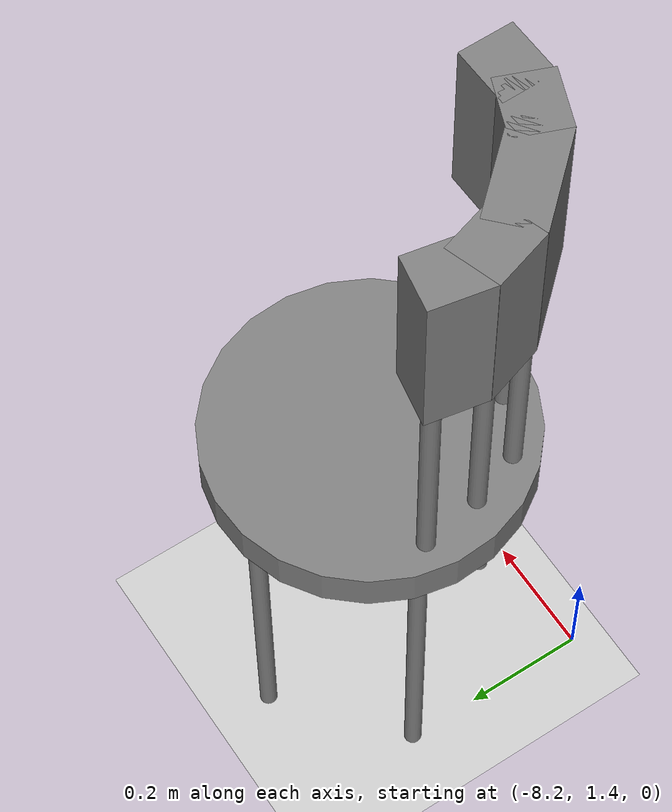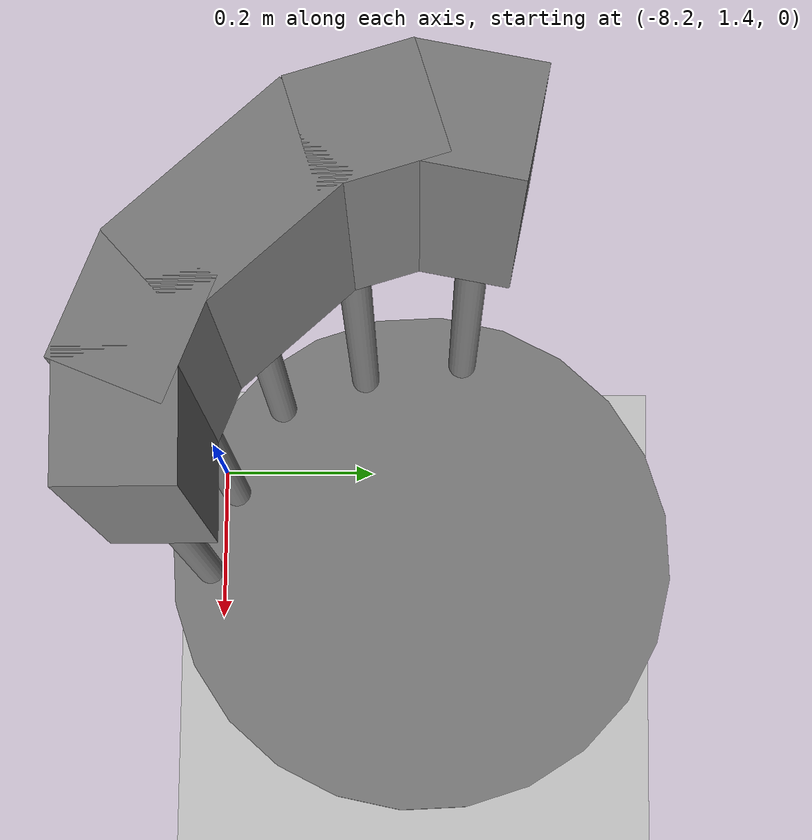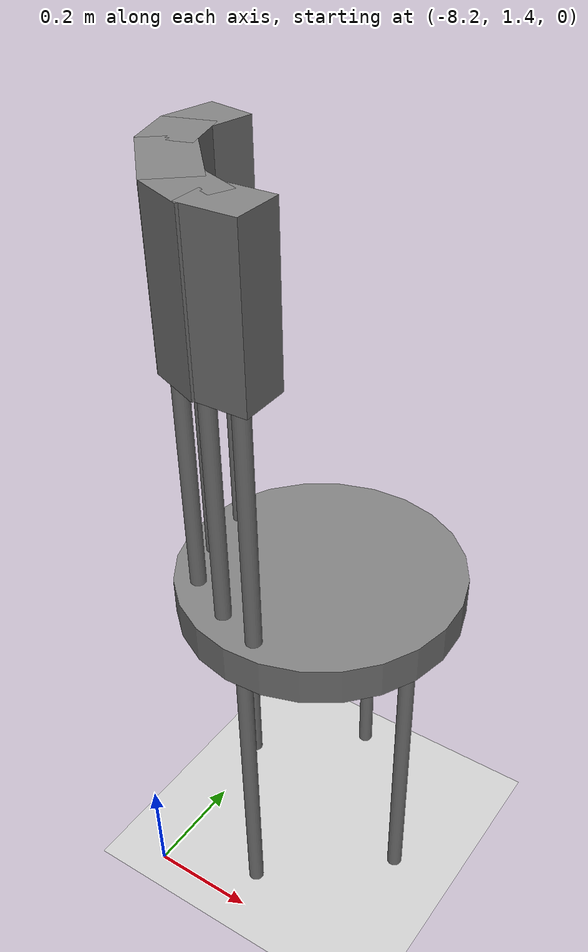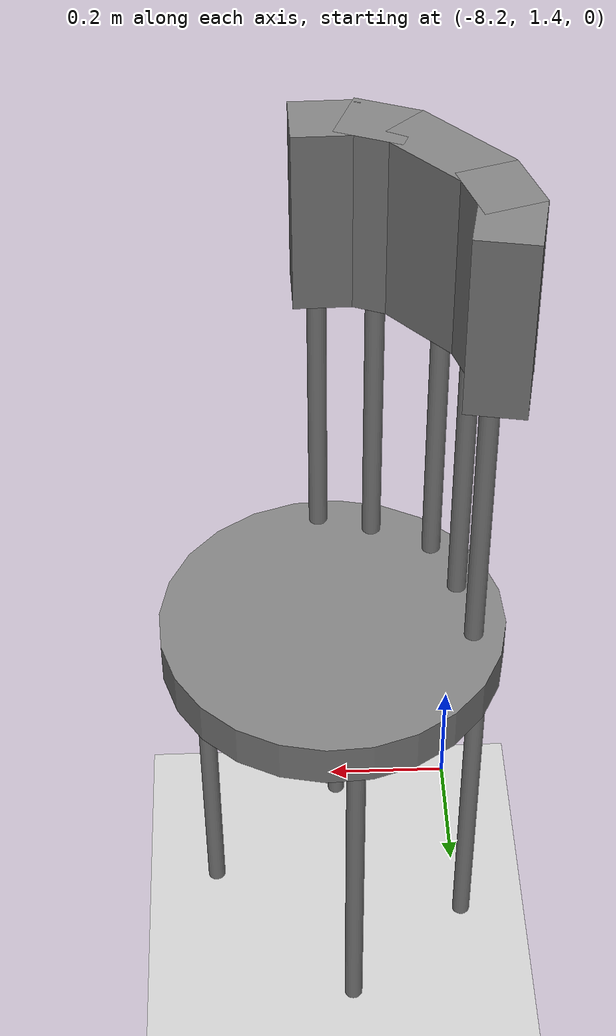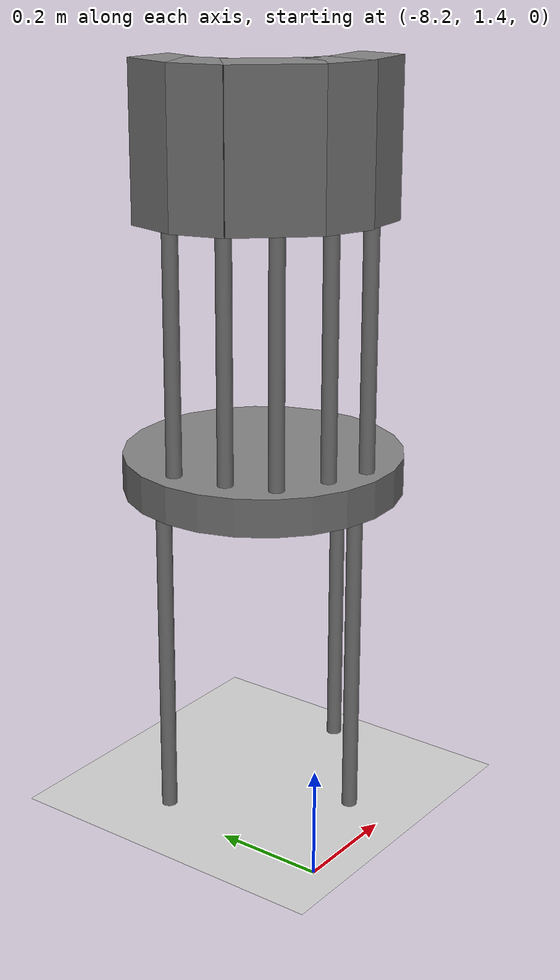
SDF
<sdf version="1.6">
 <world name="default">
  <model name="ground_plane">
   <static>1</static>
   <link name="link">
    <collision name="collision">
     <geometry><plane><normal>0 0 1</normal><size>100 100</size></plane></geometry>
     <surface>
      <contact><collide_bitmask>65535</collide_bitmask></contact>
      <friction><ode><mu>100</mu><mu2>50</mu2></ode></friction>
     </surface>
    </collision>
    <visual name="visual">
     <cast_shadows>0</cast_shadows>
     <geometry><plane><normal>0 0 1</normal><size>100 100</size></plane></geometry>
     <material>
      <script><uri>file://media/materials/scripts/gazebo.material</uri><name>Gazebo/Grey</name></script>
     </material>
    </visual>
   </link>
  </model>
  <model name="chair_1_clone_0">
   <static>1</static>
   <pose>-8.07872 1.59443 0.85 0 0 -2.42909</pose>
   <link name="colision">
    <pose>-0.112954 0 -0.15 0 -0 0</pose>
    <collision name="collision">
     <geometry><cylinder><radius>0.26</radius><length>1.4</length></cylinder></geometry>
    </collision>
   </link>
   <link name="link_0">
    <pose>-0.112954 0.002154 -0.208402 0 -0 0</pose>
    <visual name="visual">
     <geometry><cylinder><radius>0.254492</radius><length>0.0690057</length></cylinder></geometry>
     <material>
      <diffuse>0.5 0.5 0.5 1</diffuse>
      <specular>0.5 0.5 0.5 1</specular>
      <ambient>0.47 0.36 0.19 1</ambient>
     </material>
    </visual>
   </link>
   <link name="link_0_clone">
    <pose>-0.23509 -0.177559 -0.509133 0 -0 0</pose>
    <visual name="visual">
     <geometry><cylinder><radius>0.0139887</radius><length>0.624683</length></cylinder></geometry>
     <material>
      <diffuse>0.5 0.5 0.5 1</diffuse>
      <specular>0.5 0.5 0.5 1</specular>
      <ambient>0.47 0.36 0.19 1</ambient>
     </material>
    </visual>
   </link>
   <link name="link_0_clone_clone">
    <pose>-0.240938 0.153013 -0.509133 0 -0 0</pose>
    <visual name="visual">
     <geometry><cylinder><radius>0.0139887</radius><length>0.624683</length></cylinder></geometry>
     <material>
      <diffuse>0.5 0.5 0.5 1</diffuse>
      <specular>0.5 0.5 0.5 1</specular>
      <ambient>0.47 0.36 0.19 1</ambient>
     </material>
    </visual>
   </link>
   <link name="link_0_clone_clone_0">
    <pose>0.036021 0.151623 -0.509133 0 -0 0</pose>
    <visual name="visual">
     <geometry><cylinder><radius>0.0139887</radius><length>0.624683</length></cylinder></geometry>
     <material>
      <diffuse>0.5 0.5 0.5 1</diffuse>
      <specular>0.5 0.5 0.5 1</specular>
      <ambient>0.47 0.36 0.19 1</ambient>
     </material>
    </visual>
   </link>
   <link name="link_0_clone_clone_1">
    <pose>0.010219 -0.181073 -0.509133 0 -0 0</pose>
    <visual name="visual">
     <geometry><cylinder><radius>0.0139887</radius><length>0.624683</length></cylinder></geometry>
     <material>
      <diffuse>0.5 0.5 0.5 1</diffuse>
      <specular>0.5 0.5 0.5 1</specular>
      <ambient>0.47 0.36 0.19 1</ambient>
     </material>
    </visual>
   </link>
   <link name="link_0_clone_clone_1_clone">
    <pose>0.014987 -0.161898 0.047314 0 -0 0</pose>
    <visual name="visual">
     <geometry><cylinder><radius>0.0139887</radius><length>0.470785</length></cylinder></geometry>
     <material>
      <diffuse>0.5 0.5 0.5 1</diffuse>
      <specular>0.5 0.5 0.5 1</specular>
      <ambient>0.47 0.36 0.19 1</ambient>
     </material>
    </visual>
   </link>
   <link name="link_0_clone_clone_1_clone_clone">
    <pose>0.067643 -0.07581 0.047314 0 -0 0</pose>
    <visual name="visual">
     <geometry><cylinder><radius>0.0139887</radius><length>0.470785</length></cylinder></geometry>
     <material>
      <diffuse>0.5 0.5 0.5 1</diffuse>
      <specular>0.5 0.5 0.5 1</specular>
      <ambient>0.47 0.36 0.19 1</ambient>
     </material>
    </visual>
   </link>
   <link name="link_0_clone_clone_1_clone_clone_0">
    <pose>0.09896 0.009345 0.047314 0 -0 0</pose>
    <visual name="visual">
     <geometry><cylinder><radius>0.0139887</radius><length>0.470785</length></cylinder></geometry>
     <material>
      <diffuse>0.5 0.5 0.5 1</diffuse>
      <specular>0.5 0.5 0.5 1</specular>
      <ambient>0.47 0.36 0.19 1</ambient>
     </material>
    </visual>
   </link>
   <link name="link_0_clone_clone_1_clone_clone_1">
    <pose>0.062061 0.101632 0.047314 0 -0 0</pose>
    <visual name="visual">
     <geometry><cylinder><radius>0.0139887</radius><length>0.470785</length></cylinder></geometry>
     <material>
      <diffuse>0.5 0.5 0.5 1</diffuse>
      <specular>0.5 0.5 0.5 1</specular>
      <ambient>0.47 0.36 0.19 1</ambient>
     </material>
    </visual>
   </link>
   <link name="link_0_clone_clone_1_clone_clone_2">
    <pose>0.017719 0.173047 0.047314 0 -0 0</pose>
    <visual name="visual">
     <geometry><cylinder><radius>0.0139887</radius><length>0.470785</length></cylinder></geometry>
     <material>
      <diffuse>0.5 0.5 0.5 1</diffuse>
      <specular>0.5 0.5 0.5 1</specular>
      <ambient>0.47 0.36 0.19 1</ambient>
     </material>
    </visual>
   </link>
   <link name="link_1">
    <pose>0.029884 -0.160862 0.401672 0 0 -0.896575</pose>
    <visual name="visual">
     <geometry><box><size>0.085272 0.095133 0.269596</size></box></geometry>
     <material>
      <diffuse>0.5 0.5 0.5 1</diffuse>
      <specular>0.5 0.5 0.5 1</specular>
      <ambient>0.47 0.36 0.19 1</ambient>
     </material>
    </visual>
   </link>
   <link name="link_1_clone">
    <pose>0.07344 -0.104423 0.401674 0 0 -0.405782</pose>
    <visual name="visual">
     <geometry><box><size>0.085272 0.095133 0.269596</size></box></geometry>
     <material>
      <diffuse>0.5 0.5 0.5 1</diffuse>
      <specular>0.5 0.5 0.5 1</specular>
      <ambient>0.47 0.36 0.19 1</ambient>
     </material>
    </visual>
   </link>
   <link name="link_1_clone_0">
    <pose>0.086562 0.003017 0.401674 0 -0 0.028173</pose>
    <visual name="visual">
     <geometry><box><size>0.085272 0.161256 0.269596</size></box></geometry>
     <material>
      <diffuse>0.5 0.5 0.5 1</diffuse>
      <specular>0.5 0.5 0.5 1</specular>
      <ambient>0.47 0.36 0.19 1</ambient>
     </material>
    </visual>
   </link>
   <link name="link_1_clone_1">
    <pose>0.06694 0.106481 0.401674 0 -0 0.482169</pose>
    <visual name="visual">
     <geometry><box><size>0.085272 0.095133 0.269596</size></box></geometry>
     <material>
      <diffuse>0.5 0.5 0.5 1</diffuse>
      <specular>0.5 0.5 0.5 1</specular>
      <ambient>0.47 0.36 0.19 1</ambient>
     </material>
    </visual>
   </link>
   <link name="link_1_clone_2">
    <pose>0.021757 0.157964 0.401674 0 -0 0.877817</pose>
    <visual name="visual">
     <geometry><box><size>0.085272 0.095133 0.269596</size></box></geometry>
     <material>
      <diffuse>0.5 0.5 0.5 1</diffuse>
      <specular>0.5 0.5 0.5 1</specular>
      <ambient>0.47 0.36 0.19 1</ambient>
     </material>
    </visual>
   </link>
   <static>0</static>
  </model>
 </world>
</sdf>
